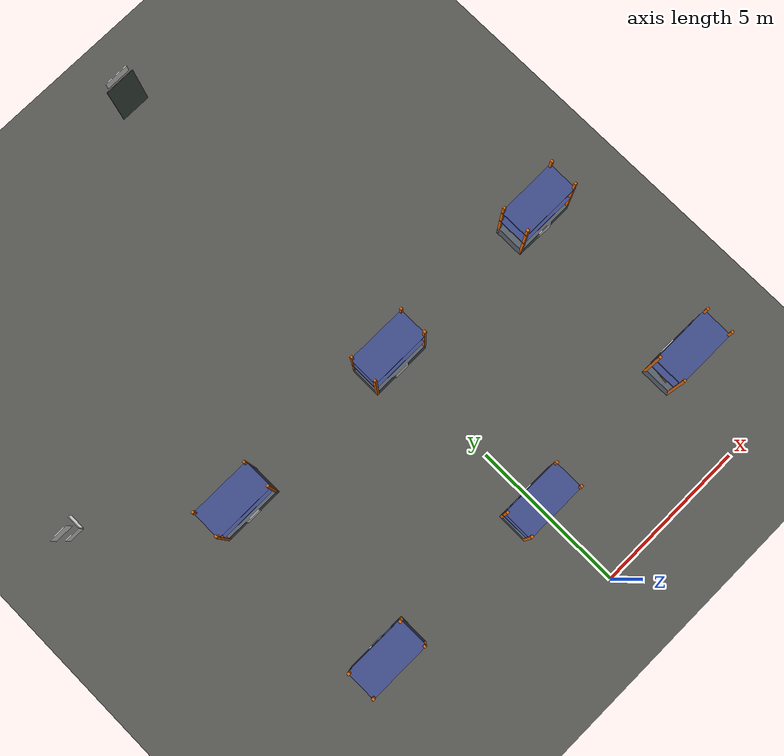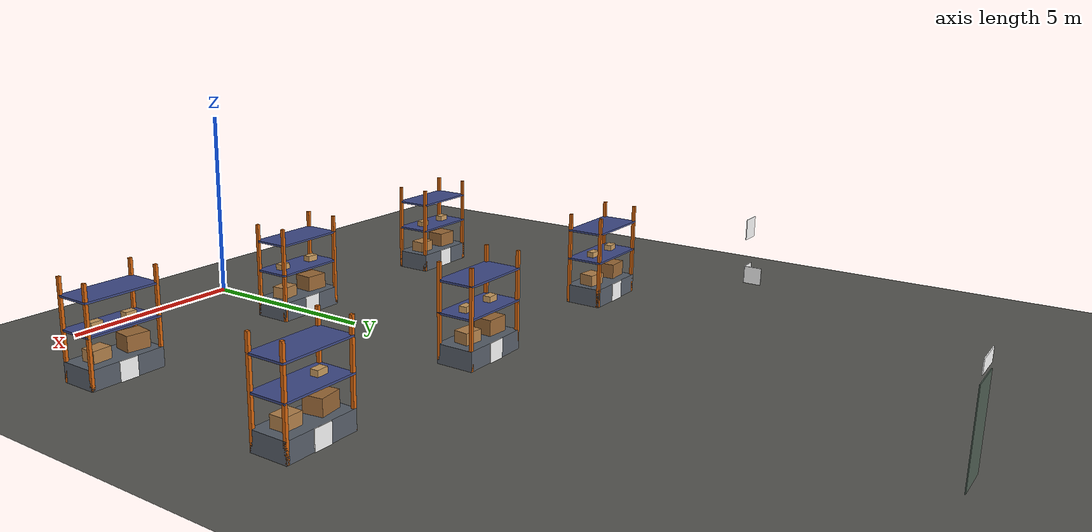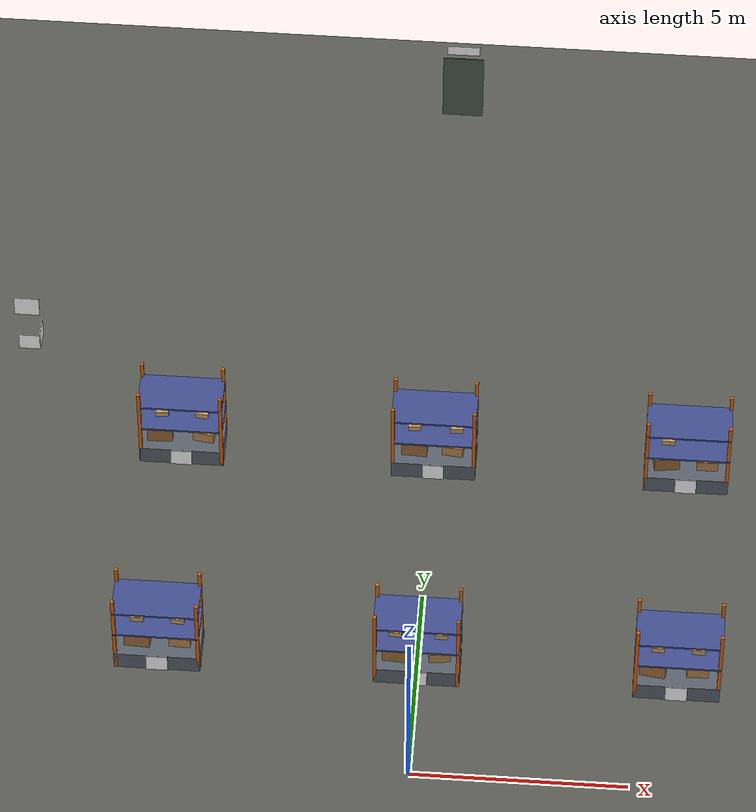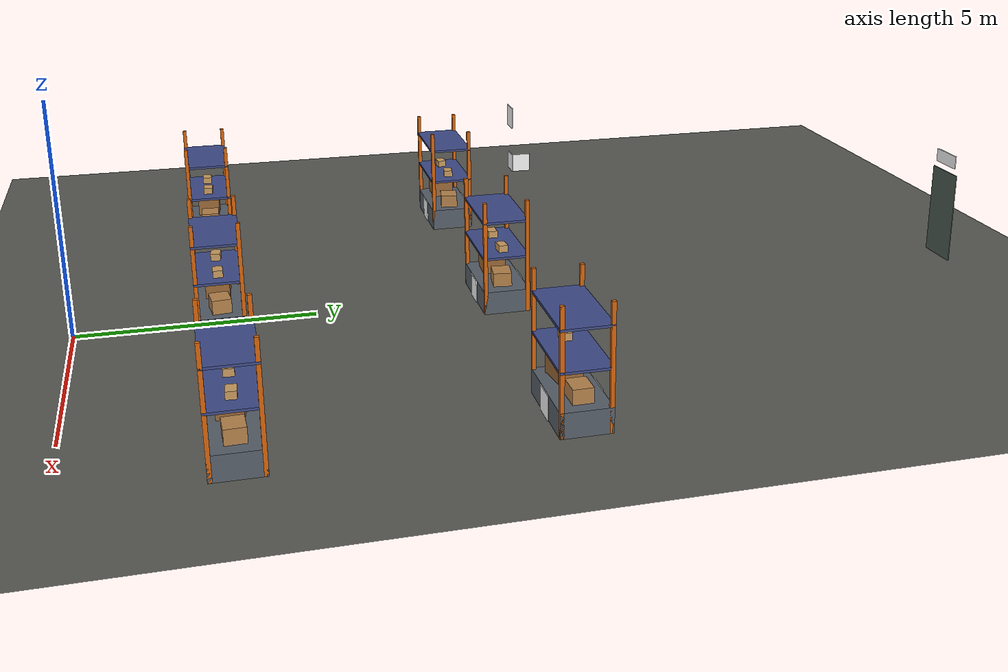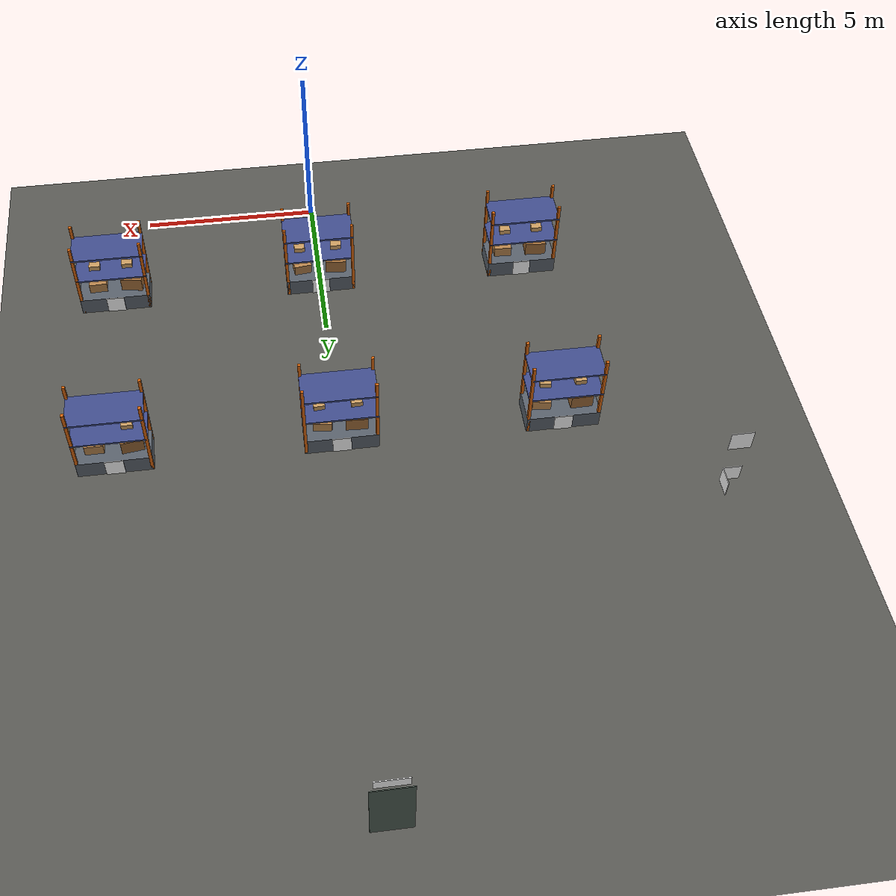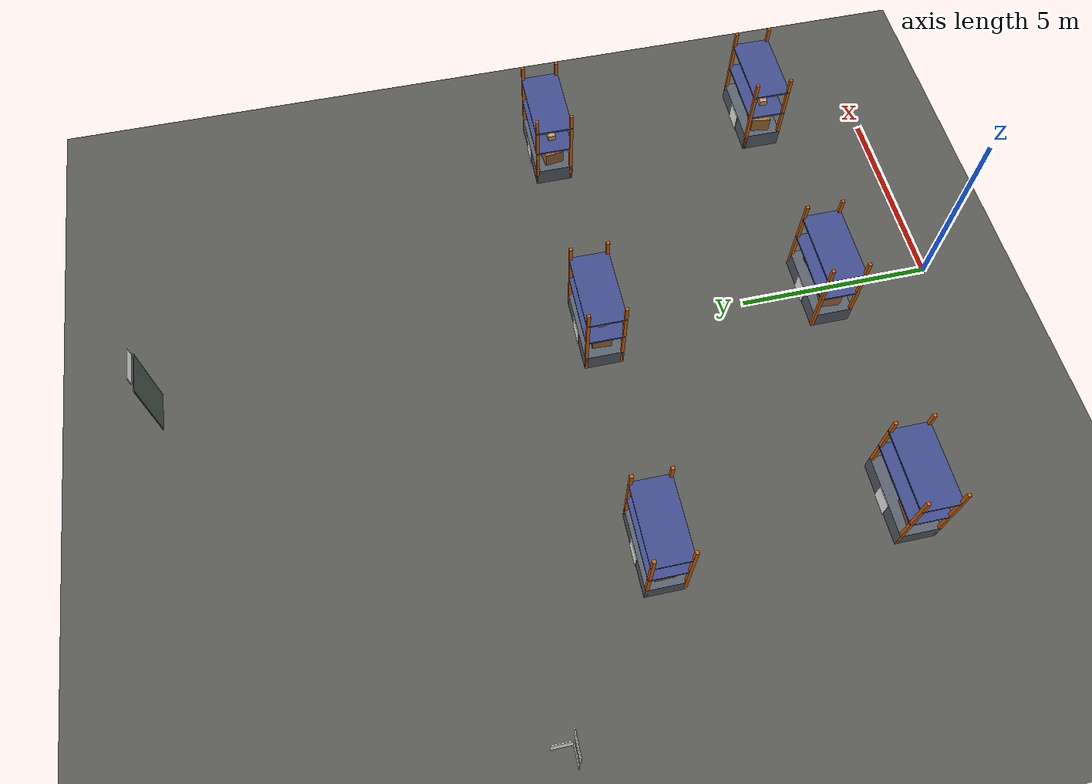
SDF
<sdf version="1.8">
 <world name="warehouse">
  <model name="ground_plane">
   <static>true</static>
   <link name="link">
    <collision name="collision">
     <geometry><plane><normal>0 0 1</normal><size>64 44</size></plane></geometry>
     <surface><friction><ode><mu>0.8</mu><mu2>0.8</mu2></ode></friction></surface>
    </collision>
    <visual name="visual">
     <geometry><plane><normal>0 0 1</normal><size>64 44</size></plane></geometry>
     <material>
      <ambient>0.35 0.35 0.33 1</ambient>
      <diffuse>0.35 0.35 0.33 1</diffuse>
      <specular>0.05 0.05 0.05 1</specular>
     </material>
    </visual>
   </link>
  </model>
  <model name="pillar_1_marker_0">
   <static>true</static>
   <pose>-9.7380 12.0000 0.0000 0.0000 0.0000 0.0000</pose>
   <link name="link">
    <collision name="plate_collision">
     <pose>0 0 0.250 0 0 0</pose>
     <geometry><box><size>0.02 0.50 0.50</size></box></geometry>
    </collision>
    <visual name="plate">
     <pose>0 0 0.250 0 0 0</pose>
     <geometry><box><size>0.02 0.50 0.50</size></box></geometry>
     <material>
      <ambient>1 1 1 1</ambient>
      <diffuse>1 1 1 1</diffuse>
      <specular>0.05 0.05 0.05 1</specular>
      <pbr>
       <metal>
        <albedo_map>model://dock_marker/materials/textures/aruco_4x4_100_10.png</albedo_map>
        <metalness>0.0</metalness>
        <roughness>0.9</roughness>
       </metal>
      </pbr>
     </material>
    </visual>
   </link>
  </model>
  <model name="pillar_1_marker_3">
   <static>true</static>
   <pose>-10.0000 11.7380 0.0000 0.0000 0.0000 -1.5708</pose>
   <link name="link">
    <collision name="plate_collision">
     <pose>0 0 0.250 0 0 0</pose>
     <geometry><box><size>0.02 0.50 0.50</size></box></geometry>
    </collision>
    <visual name="plate">
     <pose>0 0 0.250 0 0 0</pose>
     <geometry><box><size>0.02 0.50 0.50</size></box></geometry>
     <material>
      <ambient>1 1 1 1</ambient>
      <diffuse>1 1 1 1</diffuse>
      <specular>0.05 0.05 0.05 1</specular>
      <pbr>
       <metal>
        <albedo_map>model://dock_marker/materials/textures/aruco_4x4_100_13.png</albedo_map>
        <metalness>0.0</metalness>
        <roughness>0.9</roughness>
       </metal>
      </pbr>
     </material>
    </visual>
   </link>
  </model>
  <model name="rack_marker_46">
   <static>true</static>
   <pose>-6.0000 9.5120 0.0000 0.0000 0.0000 1.5708</pose>
   <link name="link">
    <collision name="plate_collision">
     <pose>0 0 0.250 0 0 0</pose>
     <geometry><box><size>0.02 0.50 0.50</size></box></geometry>
    </collision>
    <visual name="plate">
     <pose>0 0 0.250 0 0 0</pose>
     <geometry><box><size>0.02 0.50 0.50</size></box></geometry>
     <material>
      <ambient>1 1 1 1</ambient>
      <diffuse>1 1 1 1</diffuse>
      <specular>0.05 0.05 0.05 1</specular>
      <pbr>
       <metal>
        <albedo_map>model://dock_marker/materials/textures/aruco_4x4_100_46.png</albedo_map>
        <metalness>0.0</metalness>
        <roughness>0.9</roughness>
       </metal>
      </pbr>
     </material>
    </visual>
   </link>
  </model>
  <model name="rack_marker_47">
   <static>true</static>
   <pose>-6.0000 8.4880 0.0000 0.0000 0.0000 -1.5708</pose>
   <link name="link">
    <collision name="plate_collision">
     <pose>0 0 0.250 0 0 0</pose>
     <geometry><box><size>0.02 0.50 0.50</size></box></geometry>
    </collision>
    <visual name="plate">
     <pose>0 0 0.250 0 0 0</pose>
     <geometry><box><size>0.02 0.50 0.50</size></box></geometry>
     <material>
      <ambient>1 1 1 1</ambient>
      <diffuse>1 1 1 1</diffuse>
      <specular>0.05 0.05 0.05 1</specular>
      <pbr>
       <metal>
        <albedo_map>model://dock_marker/materials/textures/aruco_4x4_100_47.png</albedo_map>
        <metalness>0.0</metalness>
        <roughness>0.9</roughness>
       </metal>
      </pbr>
     </material>
    </visual>
   </link>
  </model>
  <model name="rack_marker_48">
   <static>true</static>
   <pose>0.0000 9.5120 0.0000 0.0000 0.0000 1.5708</pose>
   <link name="link">
    <collision name="plate_collision">
     <pose>0 0 0.250 0 0 0</pose>
     <geometry><box><size>0.02 0.50 0.50</size></box></geometry>
    </collision>
    <visual name="plate">
     <pose>0 0 0.250 0 0 0</pose>
     <geometry><box><size>0.02 0.50 0.50</size></box></geometry>
     <material>
      <ambient>1 1 1 1</ambient>
      <diffuse>1 1 1 1</diffuse>
      <specular>0.05 0.05 0.05 1</specular>
      <pbr>
       <metal>
        <albedo_map>model://dock_marker/materials/textures/aruco_4x4_100_48.png</albedo_map>
        <metalness>0.0</metalness>
        <roughness>0.9</roughness>
       </metal>
      </pbr>
     </material>
    </visual>
   </link>
  </model>
  <model name="rack_marker_49">
   <static>true</static>
   <pose>0.0000 8.4880 0.0000 0.0000 0.0000 -1.5708</pose>
   <link name="link">
    <collision name="plate_collision">
     <pose>0 0 0.250 0 0 0</pose>
     <geometry><box><size>0.02 0.50 0.50</size></box></geometry>
    </collision>
    <visual name="plate">
     <pose>0 0 0.250 0 0 0</pose>
     <geometry><box><size>0.02 0.50 0.50</size></box></geometry>
     <material>
      <ambient>1 1 1 1</ambient>
      <diffuse>1 1 1 1</diffuse>
      <specular>0.05 0.05 0.05 1</specular>
      <pbr>
       <metal>
        <albedo_map>model://dock_marker/materials/textures/aruco_4x4_100_49.png</albedo_map>
        <metalness>0.0</metalness>
        <roughness>0.9</roughness>
       </metal>
      </pbr>
     </material>
    </visual>
   </link>
  </model>
  <model name="rack_marker_50">
   <static>true</static>
   <pose>6.0000 9.5120 0.0000 0.0000 0.0000 1.5708</pose>
   <link name="link">
    <collision name="plate_collision">
     <pose>0 0 0.250 0 0 0</pose>
     <geometry><box><size>0.02 0.50 0.50</size></box></geometry>
    </collision>
    <visual name="plate">
     <pose>0 0 0.250 0 0 0</pose>
     <geometry><box><size>0.02 0.50 0.50</size></box></geometry>
     <material>
      <ambient>1 1 1 1</ambient>
      <diffuse>1 1 1 1</diffuse>
      <specular>0.05 0.05 0.05 1</specular>
      <pbr>
       <metal>
        <albedo_map>model://dock_marker/materials/textures/aruco_4x4_100_50.png</albedo_map>
        <metalness>0.0</metalness>
        <roughness>0.9</roughness>
       </metal>
      </pbr>
     </material>
    </visual>
   </link>
  </model>
  <model name="rack_marker_51">
   <static>true</static>
   <pose>6.0000 8.4880 0.0000 0.0000 0.0000 -1.5708</pose>
   <link name="link">
    <collision name="plate_collision">
     <pose>0 0 0.250 0 0 0</pose>
     <geometry><box><size>0.02 0.50 0.50</size></box></geometry>
    </collision>
    <visual name="plate">
     <pose>0 0 0.250 0 0 0</pose>
     <geometry><box><size>0.02 0.50 0.50</size></box></geometry>
     <material>
      <ambient>1 1 1 1</ambient>
      <diffuse>1 1 1 1</diffuse>
      <specular>0.05 0.05 0.05 1</specular>
      <pbr>
       <metal>
        <albedo_map>model://dock_marker/materials/textures/aruco_4x4_100_51.png</albedo_map>
        <metalness>0.0</metalness>
        <roughness>0.9</roughness>
       </metal>
      </pbr>
     </material>
    </visual>
   </link>
  </model>
  <model name="rack_marker_60">
   <static>true</static>
   <pose>-6.0000 3.5120 0.0000 0.0000 0.0000 1.5708</pose>
   <link name="link">
    <collision name="plate_collision">
     <pose>0 0 0.250 0 0 0</pose>
     <geometry><box><size>0.02 0.50 0.50</size></box></geometry>
    </collision>
    <visual name="plate">
     <pose>0 0 0.250 0 0 0</pose>
     <geometry><box><size>0.02 0.50 0.50</size></box></geometry>
     <material>
      <ambient>1 1 1 1</ambient>
      <diffuse>1 1 1 1</diffuse>
      <specular>0.05 0.05 0.05 1</specular>
      <pbr>
       <metal>
        <albedo_map>model://dock_marker/materials/textures/aruco_4x4_100_60.png</albedo_map>
        <metalness>0.0</metalness>
        <roughness>0.9</roughness>
       </metal>
      </pbr>
     </material>
    </visual>
   </link>
  </model>
  <model name="rack_marker_61">
   <static>true</static>
   <pose>-6.0000 2.4880 0.0000 0.0000 0.0000 -1.5708</pose>
   <link name="link">
    <collision name="plate_collision">
     <pose>0 0 0.250 0 0 0</pose>
     <geometry><box><size>0.02 0.50 0.50</size></box></geometry>
    </collision>
    <visual name="plate">
     <pose>0 0 0.250 0 0 0</pose>
     <geometry><box><size>0.02 0.50 0.50</size></box></geometry>
     <material>
      <ambient>1 1 1 1</ambient>
      <diffuse>1 1 1 1</diffuse>
      <specular>0.05 0.05 0.05 1</specular>
      <pbr>
       <metal>
        <albedo_map>model://dock_marker/materials/textures/aruco_4x4_100_61.png</albedo_map>
        <metalness>0.0</metalness>
        <roughness>0.9</roughness>
       </metal>
      </pbr>
     </material>
    </visual>
   </link>
  </model>
  <model name="rack_marker_62">
   <static>true</static>
   <pose>0.0000 3.5120 0.0000 0.0000 0.0000 1.5708</pose>
   <link name="link">
    <collision name="plate_collision">
     <pose>0 0 0.250 0 0 0</pose>
     <geometry><box><size>0.02 0.50 0.50</size></box></geometry>
    </collision>
    <visual name="plate">
     <pose>0 0 0.250 0 0 0</pose>
     <geometry><box><size>0.02 0.50 0.50</size></box></geometry>
     <material>
      <ambient>1 1 1 1</ambient>
      <diffuse>1 1 1 1</diffuse>
      <specular>0.05 0.05 0.05 1</specular>
      <pbr>
       <metal>
        <albedo_map>model://dock_marker/materials/textures/aruco_4x4_100_62.png</albedo_map>
        <metalness>0.0</metalness>
        <roughness>0.9</roughness>
       </metal>
      </pbr>
     </material>
    </visual>
   </link>
  </model>
  <model name="rack_marker_63">
   <static>true</static>
   <pose>0.0000 2.4880 0.0000 0.0000 0.0000 -1.5708</pose>
   <link name="link">
    <collision name="plate_collision">
     <pose>0 0 0.250 0 0 0</pose>
     <geometry><box><size>0.02 0.50 0.50</size></box></geometry>
    </collision>
    <visual name="plate">
     <pose>0 0 0.250 0 0 0</pose>
     <geometry><box><size>0.02 0.50 0.50</size></box></geometry>
     <material>
      <ambient>1 1 1 1</ambient>
      <diffuse>1 1 1 1</diffuse>
      <specular>0.05 0.05 0.05 1</specular>
      <pbr>
       <metal>
        <albedo_map>model://dock_marker/materials/textures/aruco_4x4_100_63.png</albedo_map>
        <metalness>0.0</metalness>
        <roughness>0.9</roughness>
       </metal>
      </pbr>
     </material>
    </visual>
   </link>
  </model>
  <model name="rack_marker_64">
   <static>true</static>
   <pose>6.0000 3.5120 0.0000 0.0000 0.0000 1.5708</pose>
   <link name="link">
    <collision name="plate_collision">
     <pose>0 0 0.250 0 0 0</pose>
     <geometry><box><size>0.02 0.50 0.50</size></box></geometry>
    </collision>
    <visual name="plate">
     <pose>0 0 0.250 0 0 0</pose>
     <geometry><box><size>0.02 0.50 0.50</size></box></geometry>
     <material>
      <ambient>1 1 1 1</ambient>
      <diffuse>1 1 1 1</diffuse>
      <specular>0.05 0.05 0.05 1</specular>
      <pbr>
       <metal>
        <albedo_map>model://dock_marker/materials/textures/aruco_4x4_100_64.png</albedo_map>
        <metalness>0.0</metalness>
        <roughness>0.9</roughness>
       </metal>
      </pbr>
     </material>
    </visual>
   </link>
  </model>
  <model name="rack_marker_65">
   <static>true</static>
   <pose>6.0000 2.4880 0.0000 0.0000 0.0000 -1.5708</pose>
   <link name="link">
    <collision name="plate_collision">
     <pose>0 0 0.250 0 0 0</pose>
     <geometry><box><size>0.02 0.50 0.50</size></box></geometry>
    </collision>
    <visual name="plate">
     <pose>0 0 0.250 0 0 0</pose>
     <geometry><box><size>0.02 0.50 0.50</size></box></geometry>
     <material>
      <ambient>1 1 1 1</ambient>
      <diffuse>1 1 1 1</diffuse>
      <specular>0.05 0.05 0.05 1</specular>
      <pbr>
       <metal>
        <albedo_map>model://dock_marker/materials/textures/aruco_4x4_100_65.png</albedo_map>
        <metalness>0.0</metalness>
        <roughness>0.9</roughness>
       </metal>
      </pbr>
     </material>
    </visual>
   </link>
  </model>
  <include>
   <uri>model://rack</uri>
   <name>rack_A3</name>
   <pose>-6.0000 9.0000 0.0000 0.0000 0.0000 0.0000</pose>
  </include>
  <include>
   <uri>model://rack</uri>
   <name>rack_A4</name>
   <pose>0.0000 9.0000 0.0000 0.0000 0.0000 0.0000</pose>
  </include>
  <include>
   <uri>model://rack</uri>
   <name>rack_A5</name>
   <pose>6.0000 9.0000 0.0000 0.0000 0.0000 0.0000</pose>
  </include>
  <include>
   <uri>model://rack</uri>
   <name>rack_B3</name>
   <pose>-6.0000 3.0000 0.0000 0.0000 0.0000 0.0000</pose>
  </include>
  <include>
   <uri>model://rack</uri>
   <name>rack_B4</name>
   <pose>0.0000 3.0000 0.0000 0.0000 0.0000 0.0000</pose>
  </include>
  <include>
   <uri>model://rack</uri>
   <name>rack_B5</name>
   <pose>6.0000 3.0000 0.0000 0.0000 0.0000 0.0000</pose>
  </include>
  <include>
   <uri>model://box_large</uri>
   <name>rack_A3_box_large_0</name>
   <pose>-6.5280 9.0000 0.5000 0.0000 0.0000 0.0268</pose>
   <static>true</static>
  </include>
  <include>
   <uri>model://box_medium</uri>
   <name>rack_A3_box_medium_1</name>
   <pose>-5.4691 9.0000 0.5000 0.0000 0.0000 -0.1481</pose>
   <static>true</static>
  </include>
  <include>
   <uri>model://box_small</uri>
   <name>rack_A3_box_small_2</name>
   <pose>-6.4694 9.0000 1.2750 0.0000 0.0000 0.0594</pose>
   <static>true</static>
  </include>
  <include>
   <uri>model://box_small</uri>
   <name>rack_A3_box_small_3</name>
   <pose>-5.5160 9.0000 1.2750 0.0000 0.0000 -0.1034</pose>
   <static>true</static>
  </include>
  <include>
   <uri>model://box_large</uri>
   <name>rack_A4_box_large_0</name>
   <pose>-0.4543 9.0000 0.5000 0.0000 0.0000 -0.0490</pose>
   <static>true</static>
  </include>
  <include>
   <uri>model://box_medium</uri>
   <name>rack_A4_box_medium_1</name>
   <pose>0.4593 9.0000 0.5000 0.0000 0.0000 -0.1210</pose>
   <static>true</static>
  </include>
  <include>
   <uri>model://box_small</uri>
   <name>rack_A4_box_small_2</name>
   <pose>-0.4653 9.0000 1.2750 0.0000 0.0000 0.0311</pose>
   <static>true</static>
  </include>
  <include>
   <uri>model://box_small</uri>
   <name>rack_A4_box_small_3</name>
   <pose>0.5307 9.0000 1.2750 0.0000 0.0000 0.0689</pose>
   <static>true</static>
  </include>
  <include>
   <uri>model://box_large</uri>
   <name>rack_A5_box_large_0</name>
   <pose>5.5036 9.0000 0.5000 0.0000 0.0000 0.1419</pose>
   <static>true</static>
  </include>
  <include>
   <uri>model://box_medium</uri>
   <name>rack_A5_box_medium_1</name>
   <pose>6.4879 9.0000 0.5000 0.0000 0.0000 0.0156</pose>
   <static>true</static>
  </include>
  <include>
   <uri>model://box_small</uri>
   <name>rack_A5_box_small_2</name>
   <pose>5.5329 9.0000 1.2750 0.0000 0.0000 0.0356</pose>
   <static>true</static>
  </include>
  <include>
   <uri>model://box_large</uri>
   <name>rack_B3_box_large_0</name>
   <pose>-6.4624 3.0000 0.5000 0.0000 0.0000 -0.0556</pose>
   <static>true</static>
  </include>
  <include>
   <uri>model://box_medium</uri>
   <name>rack_B3_box_medium_1</name>
   <pose>-5.4845 3.0000 0.5000 0.0000 0.0000 -0.0313</pose>
   <static>true</static>
  </include>
  <include>
   <uri>model://box_small</uri>
   <name>rack_B3_box_small_2</name>
   <pose>-6.4585 3.0000 1.2750 0.0000 0.0000 -0.0123</pose>
   <static>true</static>
  </include>
  <include>
   <uri>model://box_small</uri>
   <name>rack_B3_box_small_3</name>
   <pose>-5.5235 3.0000 1.2750 0.0000 0.0000 -0.0760</pose>
   <static>true</static>
  </include>
  <include>
   <uri>model://box_large</uri>
   <name>rack_B4_box_large_0</name>
   <pose>-0.4939 3.0000 0.5000 0.0000 0.0000 -0.0712</pose>
   <static>true</static>
  </include>
  <include>
   <uri>model://box_medium</uri>
   <name>rack_B4_box_medium_1</name>
   <pose>0.5085 3.0000 0.5000 0.0000 0.0000 0.1193</pose>
   <static>true</static>
  </include>
  <include>
   <uri>model://box_small</uri>
   <name>rack_B4_box_small_2</name>
   <pose>-0.5101 3.0000 1.2750 0.0000 0.0000 -0.0842</pose>
   <static>true</static>
  </include>
  <include>
   <uri>model://box_small</uri>
   <name>rack_B4_box_small_3</name>
   <pose>0.5498 3.0000 1.2750 0.0000 0.0000 0.0029</pose>
   <static>true</static>
  </include>
  <include>
   <uri>model://box_large</uri>
   <name>rack_B5_box_large_0</name>
   <pose>5.4591 3.0000 0.5000 0.0000 0.0000 -0.1359</pose>
   <static>true</static>
  </include>
  <include>
   <uri>model://box_medium</uri>
   <name>rack_B5_box_medium_1</name>
   <pose>6.4610 3.0000 0.5000 0.0000 0.0000 0.0382</pose>
   <static>true</static>
  </include>
  <include>
   <uri>model://box_small</uri>
   <name>rack_B5_box_small_2</name>
   <pose>5.5292 3.0000 1.2750 0.0000 0.0000 -0.0234</pose>
   <static>true</static>
  </include>
  <include>
   <uri>model://box_small</uri>
   <name>rack_B5_box_small_3</name>
   <pose>6.4564 3.0000 1.2750 0.0000 0.0000 -0.0355</pose>
   <static>true</static>
  </include>
  <model name="sign_caution_forklift_1">
   <static>true</static>
   <pose>-10.0000 11.7380 0.0000 0.0000 0.0000 -1.5708</pose>
   <link name="link">
    <visual name="plate">
     <pose>0 0 1.600 0 0 0</pose>
     <geometry><box><size>0.02 0.60 0.60</size></box></geometry>
     <material>
      <ambient>1 1 1 1</ambient>
      <diffuse>1 1 1 1</diffuse>
      <specular>0.05 0.05 0.05 1</specular>
      <pbr>
       <metal>
        <albedo_map>model://sign/materials/textures/sign_caution_forklift.png</albedo_map>
        <metalness>0.0</metalness>
        <roughness>0.9</roughness>
       </metal>
      </pbr>
     </material>
    </visual>
   </link>
  </model>
  <model name="sign_exit_north">
   <static>true</static>
   <pose>0.0000 19.9880 0.0000 0.0000 0.0000 -1.5708</pose>
   <link name="link">
    <visual name="plate">
     <pose>0 0 2.400 0 0 0</pose>
     <geometry><box><size>0.02 0.80 0.30</size></box></geometry>
     <material>
      <ambient>1 1 1 1</ambient>
      <diffuse>1 1 1 1</diffuse>
      <specular>0.05 0.05 0.05 1</specular>
      <pbr>
       <metal>
        <albedo_map>model://sign/materials/textures/sign_exit.png</albedo_map>
        <metalness>0.0</metalness>
        <roughness>0.9</roughness>
       </metal>
      </pbr>
     </material>
    </visual>
   </link>
  </model>
  <model name="door_exit_north">
   <static>true</static>
   <pose>0.0000 19.9880 0.0000 0.0000 0.0000 -1.5708</pose>
   <link name="link">
    <visual name="door">
     <pose>-0.002 0 1.05 0 0 0</pose>
     <geometry><box><size>0.02 1.0 2.1</size></box></geometry>
     <material><ambient>0.30 0.36 0.32 1</ambient><diffuse>0.30 0.36 0.32 1</diffuse></material>
    </visual>
   </link>
  </model>
 </world>
</sdf>
